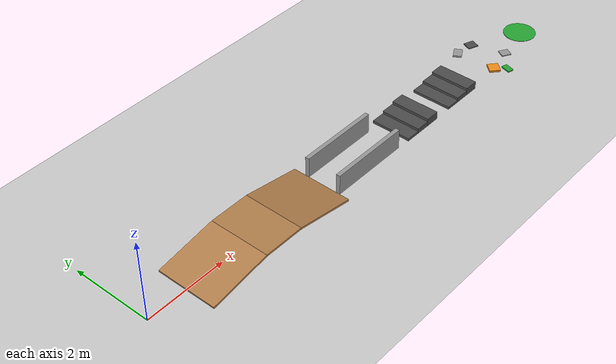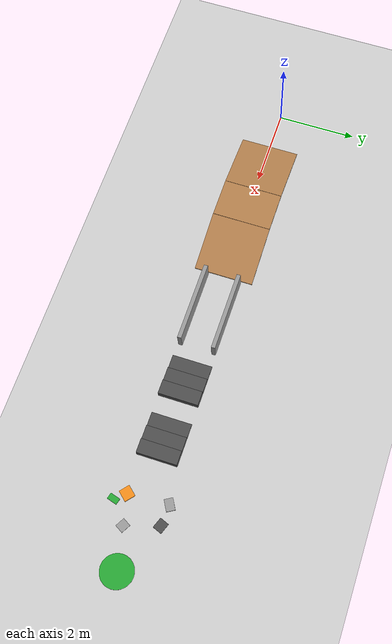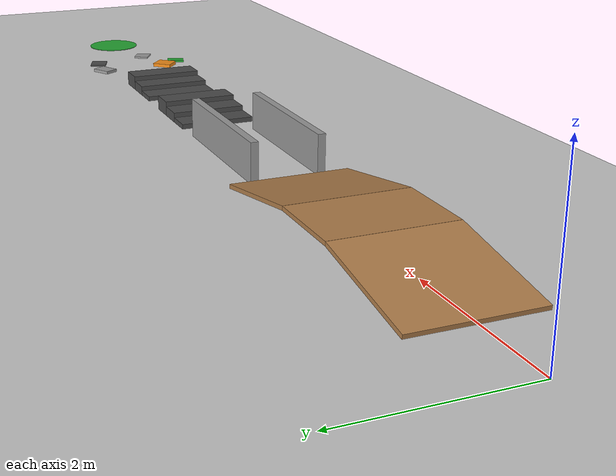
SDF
<?xml version="1.0" ?>
<!-- 由 omni_world.py 自动生成: scene=mixed seed=9 -->
<sdf version="1.5">
  <world name="mixed">
    <physics type="ode">
      <type>world</type>
      <max_step_size>0.001</max_step_size>
      <real_time_update_rate>1000</real_time_update_rate>
      <iters>500</iters>
    </physics>
    <include><uri>model://sun</uri></include>
    <include><uri>model://ground_plane</uri></include>
    <model name="ramp_up">
      <static>true</static>
      <pose>1.739 0.000 0.155 0.0000 -0.1745 0.0000</pose>
      <link name="link">
        <collision name="collision">
          <geometry><box><size>1.500 1.500 0.050</size></box></geometry>
          <surface><friction><ode><mu>1.2</mu><mu2>1.2</mu2></ode></friction></surface>
        </collision>
        <visual name="visual">
          <geometry><box><size>1.500 1.500 0.050</size></box></geometry>
          <material><script><uri>file://media/materials/scripts/gazebo.material</uri>
            <name>Gazebo/Wood</name></script></material>
        </visual>
      </link>
    </model>
    <model name="platform">
      <static>true</static>
      <pose>2.977 0.000 0.285 0.0000 0.0000 0.0000</pose>
      <link name="link">
        <collision name="collision">
          <geometry><box><size>1.000 1.500 0.050</size></box></geometry>
          <surface><friction><ode><mu>1.2</mu><mu2>1.2</mu2></ode></friction></surface>
        </collision>
        <visual name="visual">
          <geometry><box><size>1.000 1.500 0.050</size></box></geometry>
          <material><script><uri>file://media/materials/scripts/gazebo.material</uri>
            <name>Gazebo/Wood</name></script></material>
        </visual>
      </link>
    </model>
    <model name="ramp_down">
      <static>true</static>
      <pose>4.216 0.000 0.155 0.0000 0.1745 0.0000</pose>
      <link name="link">
        <collision name="collision">
          <geometry><box><size>1.500 1.500 0.050</size></box></geometry>
          <surface><friction><ode><mu>1.2</mu><mu2>1.2</mu2></ode></friction></surface>
        </collision>
        <visual name="visual">
          <geometry><box><size>1.500 1.500 0.050</size></box></geometry>
          <material><script><uri>file://media/materials/scripts/gazebo.material</uri>
            <name>Gazebo/Wood</name></script></material>
        </visual>
      </link>
    </model>
    <model name="mx_wl_1">
      <static>true</static>
      <pose>6.000 0.425 0.250 0.0000 0.0000 0.0000</pose>
      <link name="link">
        <collision name="collision">
          <geometry><box><size>2.000 0.100 0.500</size></box></geometry>
          <surface><friction><ode><mu>1.0</mu><mu2>1.0</mu2></ode></friction></surface>
        </collision>
        <visual name="visual">
          <geometry><box><size>2.000 0.100 0.500</size></box></geometry>
          <material><script><uri>file://media/materials/scripts/gazebo.material</uri>
            <name>Gazebo/Grey</name></script></material>
        </visual>
      </link>
    </model>
    <model name="mx_wr_1">
      <static>true</static>
      <pose>6.000 -0.425 0.250 0.0000 0.0000 0.0000</pose>
      <link name="link">
        <collision name="collision">
          <geometry><box><size>2.000 0.100 0.500</size></box></geometry>
          <surface><friction><ode><mu>1.0</mu><mu2>1.0</mu2></ode></friction></surface>
        </collision>
        <visual name="visual">
          <geometry><box><size>2.000 0.100 0.500</size></box></geometry>
          <material><script><uri>file://media/materials/scripts/gazebo.material</uri>
            <name>Gazebo/Grey</name></script></material>
        </visual>
      </link>
    </model>
    <model name="mx_step_2_0">
      <static>true</static>
      <pose>7.500 0.000 0.033 0.0000 0.0000 0.0000</pose>
      <link name="link">
        <collision name="collision">
          <geometry><box><size>0.350 1.000 0.065</size></box></geometry>
          <surface><friction><ode><mu>1.0</mu><mu2>1.0</mu2></ode></friction></surface>
        </collision>
        <visual name="visual">
          <geometry><box><size>0.350 1.000 0.065</size></box></geometry>
          <material><script><uri>file://media/materials/scripts/gazebo.material</uri>
            <name>Gazebo/DarkGrey</name></script></material>
        </visual>
      </link>
    </model>
    <model name="mx_step_2_1">
      <static>true</static>
      <pose>7.850 0.000 0.065 0.0000 0.0000 0.0000</pose>
      <link name="link">
        <collision name="collision">
          <geometry><box><size>0.350 1.000 0.130</size></box></geometry>
          <surface><friction><ode><mu>1.0</mu><mu2>1.0</mu2></ode></friction></surface>
        </collision>
        <visual name="visual">
          <geometry><box><size>0.350 1.000 0.130</size></box></geometry>
          <material><script><uri>file://media/materials/scripts/gazebo.material</uri>
            <name>Gazebo/DarkGrey</name></script></material>
        </visual>
      </link>
    </model>
    <model name="mx_step_2_2">
      <static>true</static>
      <pose>8.200 0.000 0.098 0.0000 0.0000 0.0000</pose>
      <link name="link">
        <collision name="collision">
          <geometry><box><size>0.350 1.000 0.195</size></box></geometry>
          <surface><friction><ode><mu>1.0</mu><mu2>1.0</mu2></ode></friction></surface>
        </collision>
        <visual name="visual">
          <geometry><box><size>0.350 1.000 0.195</size></box></geometry>
          <material><script><uri>file://media/materials/scripts/gazebo.material</uri>
            <name>Gazebo/DarkGrey</name></script></material>
        </visual>
      </link>
    </model>
    <model name="mx_step_3_0">
      <static>true</static>
      <pose>9.000 0.000 0.033 0.0000 0.0000 0.0000</pose>
      <link name="link">
        <collision name="collision">
          <geometry><box><size>0.350 1.000 0.065</size></box></geometry>
          <surface><friction><ode><mu>1.0</mu><mu2>1.0</mu2></ode></friction></surface>
        </collision>
        <visual name="visual">
          <geometry><box><size>0.350 1.000 0.065</size></box></geometry>
          <material><script><uri>file://media/materials/scripts/gazebo.material</uri>
            <name>Gazebo/DarkGrey</name></script></material>
        </visual>
      </link>
    </model>
    <model name="mx_step_3_1">
      <static>true</static>
      <pose>9.350 0.000 0.065 0.0000 0.0000 0.0000</pose>
      <link name="link">
        <collision name="collision">
          <geometry><box><size>0.350 1.000 0.130</size></box></geometry>
          <surface><friction><ode><mu>1.0</mu><mu2>1.0</mu2></ode></friction></surface>
        </collision>
        <visual name="visual">
          <geometry><box><size>0.350 1.000 0.130</size></box></geometry>
          <material><script><uri>file://media/materials/scripts/gazebo.material</uri>
            <name>Gazebo/DarkGrey</name></script></material>
        </visual>
      </link>
    </model>
    <model name="mx_step_3_2">
      <static>true</static>
      <pose>9.700 0.000 0.098 0.0000 0.0000 0.0000</pose>
      <link name="link">
        <collision name="collision">
          <geometry><box><size>0.350 1.000 0.195</size></box></geometry>
          <surface><friction><ode><mu>1.0</mu><mu2>1.0</mu2></ode></friction></surface>
        </collision>
        <visual name="visual">
          <geometry><box><size>0.350 1.000 0.195</size></box></geometry>
          <material><script><uri>file://media/materials/scripts/gazebo.material</uri>
            <name>Gazebo/DarkGrey</name></script></material>
        </visual>
      </link>
    </model>
    <model name="mx_rough_4_0">
      <static>true</static>
      <pose>11.515 -0.226 0.013 0.0000 0.0000 1.0494</pose>
      <link name="link">
        <collision name="collision">
          <geometry><box><size>0.220 0.241 0.027</size></box></geometry>
          <surface><friction><ode><mu>1.0</mu><mu2>1.0</mu2></ode></friction></surface>
        </collision>
        <visual name="visual">
          <geometry><box><size>0.220 0.241 0.027</size></box></geometry>
          <material><script><uri>file://media/materials/scripts/gazebo.material</uri>
            <name>Gazebo/Grey</name></script></material>
        </visual>
      </link>
    </model>
    <model name="mx_rough_4_1">
      <static>true</static>
      <pose>10.754 0.625 0.023 0.0000 0.0000 0.5291</pose>
      <link name="link">
        <collision name="collision">
          <geometry><box><size>0.293 0.213 0.045</size></box></geometry>
          <surface><friction><ode><mu>1.0</mu><mu2>1.0</mu2></ode></friction></surface>
        </collision>
        <visual name="visual">
          <geometry><box><size>0.293 0.213 0.045</size></box></geometry>
          <material><script><uri>file://media/materials/scripts/gazebo.material</uri>
            <name>Gazebo/Grey</name></script></material>
        </visual>
      </link>
    </model>
    <model name="mx_rough_4_2">
      <static>true</static>
      <pose>11.259 0.593 0.012 0.0000 0.0000 1.2053</pose>
      <link name="link">
        <collision name="collision">
          <geometry><box><size>0.239 0.266 0.024</size></box></geometry>
          <surface><friction><ode><mu>1.0</mu><mu2>1.0</mu2></ode></friction></surface>
        </collision>
        <visual name="visual">
          <geometry><box><size>0.239 0.266 0.024</size></box></geometry>
          <material><script><uri>file://media/materials/scripts/gazebo.material</uri>
            <name>Gazebo/DarkGrey</name></script></material>
        </visual>
      </link>
    </model>
    <model name="mx_rough_4_3">
      <static>true</static>
      <pose>10.807 -0.386 0.026 0.0000 0.0000 2.4271</pose>
      <link name="link">
        <collision name="collision">
          <geometry><box><size>0.269 0.283 0.052</size></box></geometry>
          <surface><friction><ode><mu>1.0</mu><mu2>1.0</mu2></ode></friction></surface>
        </collision>
        <visual name="visual">
          <geometry><box><size>0.269 0.283 0.052</size></box></geometry>
          <material><script><uri>file://media/materials/scripts/gazebo.material</uri>
            <name>Gazebo/Orange</name></script></material>
        </visual>
      </link>
    </model>
    <model name="mx_rough_4_4">
      <static>true</static>
      <pose>11.012 -0.640 0.017 0.0000 0.0000 1.2918</pose>
      <link name="link">
        <collision name="collision">
          <geometry><box><size>0.256 0.151 0.034</size></box></geometry>
          <surface><friction><ode><mu>1.0</mu><mu2>1.0</mu2></ode></friction></surface>
        </collision>
        <visual name="visual">
          <geometry><box><size>0.256 0.151 0.034</size></box></geometry>
          <material><script><uri>file://media/materials/scripts/gazebo.material</uri>
            <name>Gazebo/Green</name></script></material>
        </visual>
      </link>
    </model>
    <model name="goal">
      <static>true</static>
      <pose>12.500 0.000 0.005 0 0 0</pose>
      <link name="link">
        <visual name="visual">
          <geometry><cylinder><radius>0.400</radius><length>0.01</length></cylinder></geometry>
          <material><script><uri>file://media/materials/scripts/gazebo.material</uri>
            <name>Gazebo/Green</name></script></material>
        </visual>
      </link>
    </model>

  </world>
</sdf>
